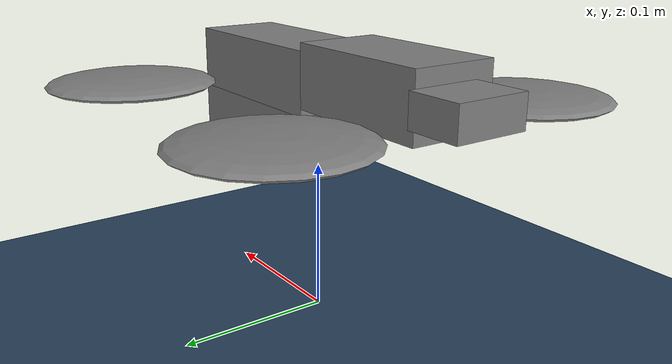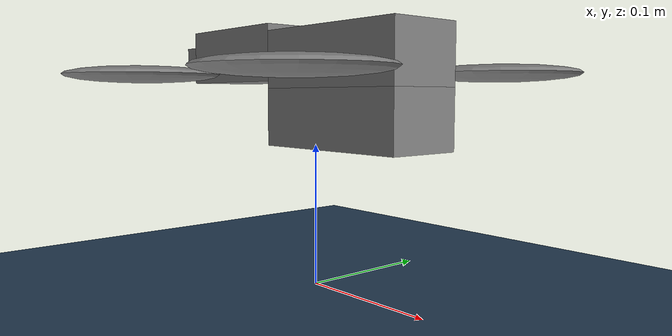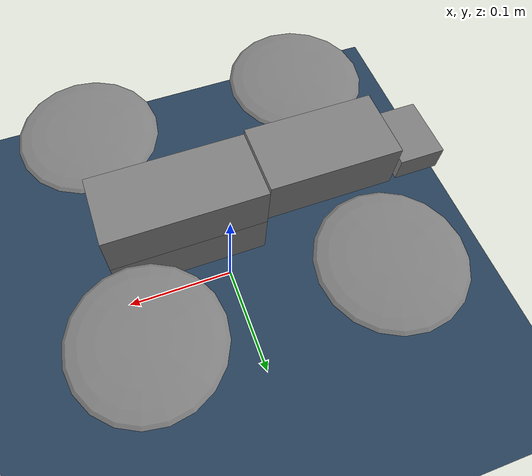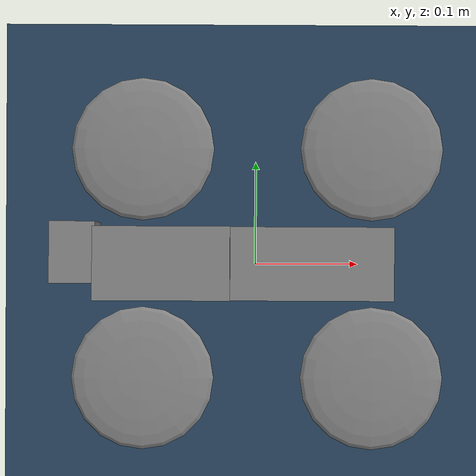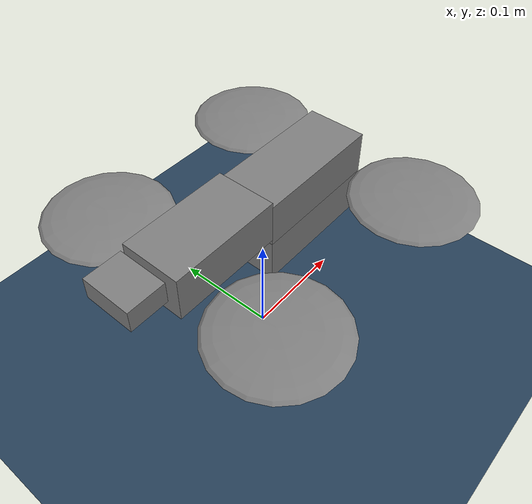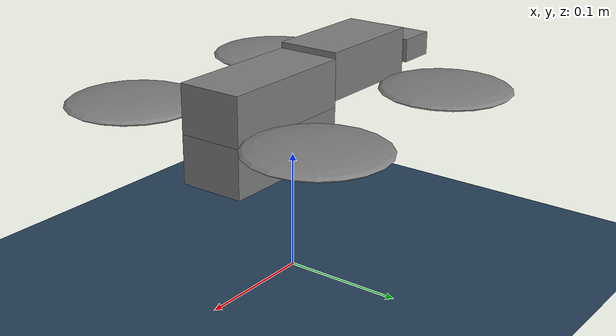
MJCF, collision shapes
<mujoco model="real quadrotor scene">
  <include file="x2_real.xml"/>

  <statistic center="0 0 0.1" extent="0.6" meansize=".05"/>

  <visual>
    <headlight diffuse="0.6 0.6 0.6" ambient="0.3 0.3 0.3" specular="0 0 0"/>
    <rgba haze="0.15 0.25 0.35 1"/>
    <global azimuth="-20" elevation="-20" ellipsoidinertia="true"/>
  </visual>

  <asset>
    <texture type="skybox" builtin="gradient" rgb1="0.3 0.5 0.7" rgb2="0 0 0" width="512" height="3072"/>
    <texture type="2d" name="groundplane" builtin="checker" mark="edge" rgb1="0.2 0.3 0.4" rgb2="0.1 0.2 0.3"
      markrgb="0.8 0.8 0.8" width="300" height="300"/>
    <material name="groundplane" texture="groundplane" texuniform="true" texrepeat="5 5" reflectance="0.2"/>
  </asset>

  <worldbody>
    <light pos="0 0 1.5" dir="0 0 -1" directional="true"/>
    <geom name="floor" size="0 0 0.05" type="plane" material="groundplane"/>
  </worldbody>
</mujoco>

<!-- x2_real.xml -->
<mujoco model="real quadrotor x2">
  <compiler autolimits="true" assetdir="assets"/>

  <option timestep="0.0025" density="1.225" viscosity="1.8e-5"/>

  <default>
    <default class="x2">
      <geom mass="0"/>
      <motor ctrlrange="0 14.8"/>
      <mesh scale="0.01 0.01 0.01"/>
      <default class="visual">
        <geom group="2" type="mesh" contype="0" conaffinity="0"/>
      </default>
      <default class="collision">
        <geom group="3" type="box"/>
        <default class="rotor">
          <geom type="ellipsoid" size=".055 .055 .006" mass="0"/>
        </default>
      </default>
      <site group="5"/>
    </default>
  </default>

  <asset>
    <texture type="2d" file="X2_lowpoly_texture_SpinningProps_1024.png"/>
    <material name="phong3SG" texture="X2_lowpoly_texture_SpinningProps_1024"/>
    <material name="invisible" rgba="0 0 0 0"/>

    <mesh class="x2" file="X2_lowpoly.obj"/>
  </asset>

  <worldbody>
    <light name="spotlight" mode="targetbodycom" target="x2" pos="0 -1 2"/>
    <body name="x2" pos="0 0 0.1" childclass="x2">
      <freejoint/>
      <inertial pos="0 0 0" mass="0.813" diaginertia="0.00191426 0.002370211 0.003600705"/>
      <camera name="track" pos="-1 0 .5" xyaxes="0 -1 0 1 0 2" mode="trackcom"/>
      <site name="imu" pos="0 0 .02"/>
      <geom material="phong3SG" mesh="X2_lowpoly" class="visual" quat="0 0 1 1"/>
      <geom class="collision" size=".06 .027 .02" pos=".04 0 .02"/>
      <geom class="collision" size=".06 .027 .02" pos=".04 0 .06"/>
      <geom class="collision" size=".05 .027 .02" pos="-.07 0 .065"/>
      <geom class="collision" size=".023 .017 .01" pos="-.137 .008 .065" quat="1 0 0 1"/>
      <geom name="motor1_front_right_ccw" class="rotor" pos=".0883883476 -.0883883476 .05"/>
      <geom name="motor2_rear_left_ccw" class="rotor" pos="-.0883883476 .0883883476 .05"/>
      <geom name="motor3_front_left_cw" class="rotor" pos=".0883883476 .0883883476 .05"/>
      <geom name="motor4_rear_right_cw" class="rotor" pos="-.0883883476 -.0883883476 .05"/>
      <geom size=".16 .04 .02" pos="0 0 0.02" type="ellipsoid" class="visual" material="invisible"/>
      <site name="motor1_front_right_ccw" pos=".0883883476 -.0883883476 .05"/>
      <site name="motor2_rear_left_ccw" pos="-.0883883476 .0883883476 .05"/>
      <site name="motor3_front_left_cw" pos=".0883883476 .0883883476 .05"/>
      <site name="motor4_rear_right_cw" pos="-.0883883476 -.0883883476 .05"/>
    </body>
  </worldbody>

  <actuator>
    <motor class="x2" name="motor1_front_right_ccw" site="motor1_front_right_ccw" gear="0 0 1 0 0 -0.3"/>
    <motor class="x2" name="motor2_rear_left_ccw" site="motor2_rear_left_ccw" gear="0 0 1 0 0 -0.3"/>
    <motor class="x2" name="motor3_front_left_cw" site="motor3_front_left_cw" gear="0 0 1 0 0 0.3"/>
    <motor class="x2" name="motor4_rear_right_cw" site="motor4_rear_right_cw" gear="0 0 1 0 0 0.3"/>
  </actuator>

  <sensor>
    <gyro name="body_gyro" site="imu"/>
    <accelerometer name="body_linacc" site="imu"/>
    <framequat name="body_quat" objtype="site" objname="imu"/>
  </sensor>

  <keyframe>
    <key name="hover" qpos="0 0 0.3 1 0 0 0" ctrl="1.9918125 1.9918125 1.9918125 1.9918125"/>
  </keyframe>
</mujoco>
